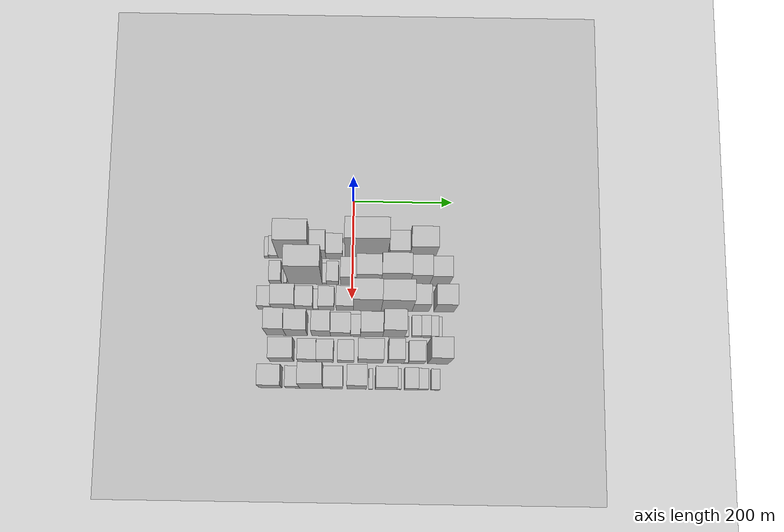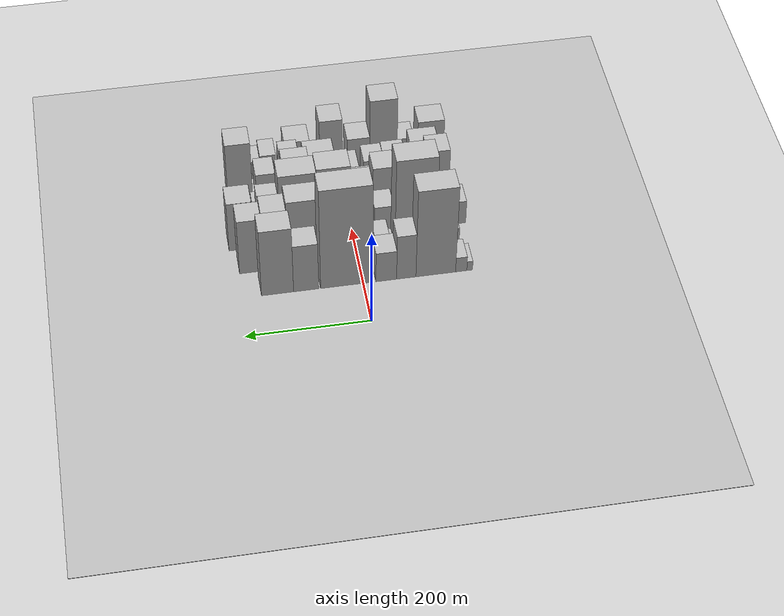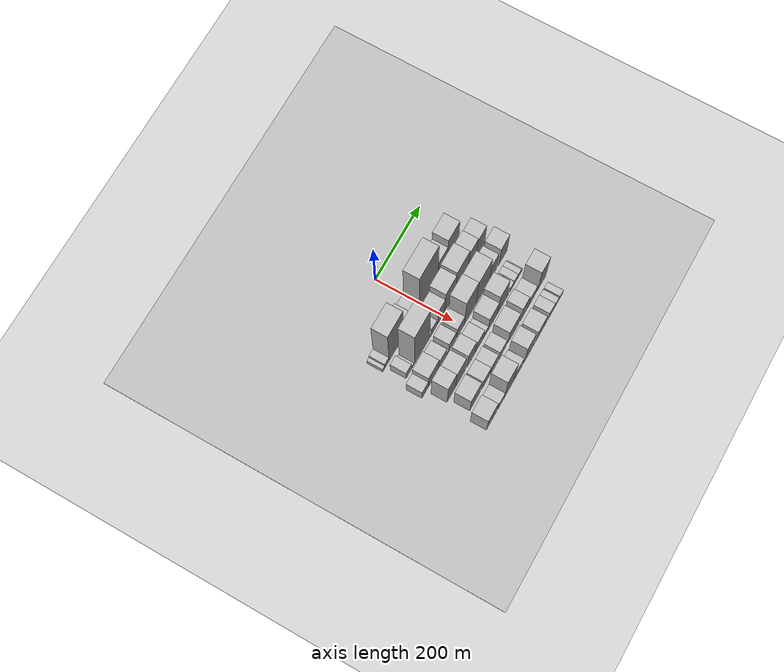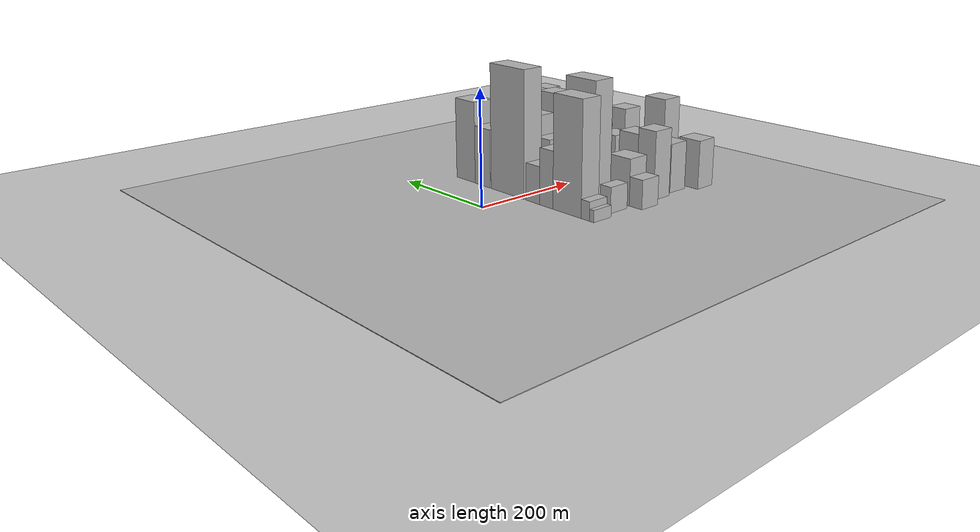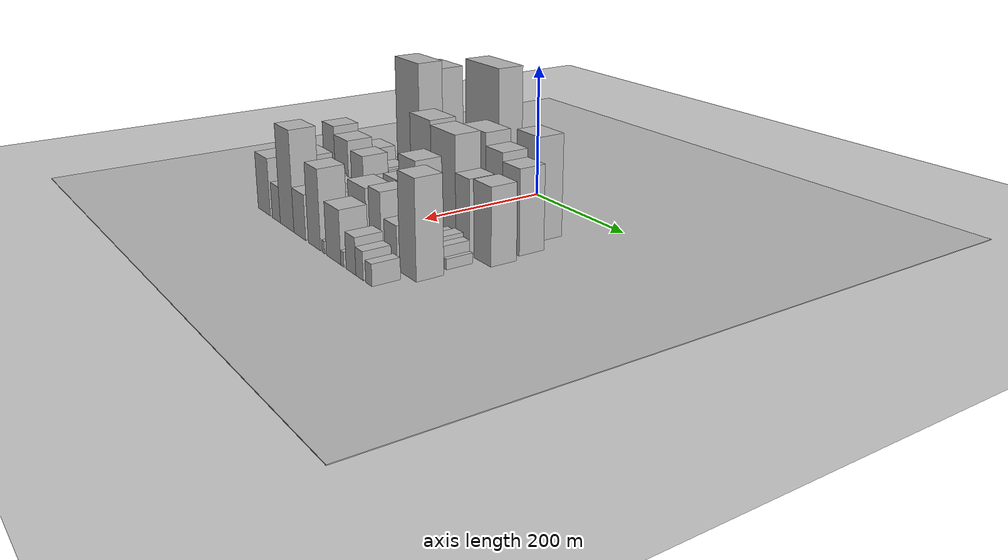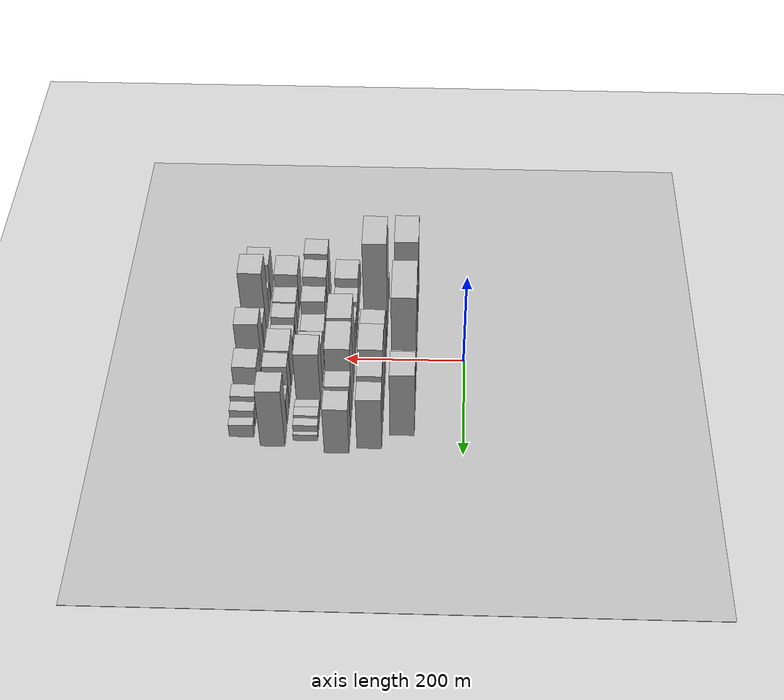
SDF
<sdf version="1.6">
 <world name="default">
  <include><name>ground_plane_1</name><uri>model://HANNAS_ground_plane</uri></include>
  <include>
   <name>ground_plane_2</name>
   <uri>model://HANNAS_ground_plane</uri>
   <pose>100 0 0  0 0 0</pose>
  </include>
  <model name="building_21">
   <static>1</static>
   <pose>100.0000 -172.8914 0 0.000000 0.000000 0.000000</pose>
   <link name="link">
    <pose>0 0 10.50 0 0 0</pose>
    <collision name="collision"><geometry><box><size>40.0000 9.2983 21.0000</size></box></geometry></collision>
    <visual name="visual">
     <cast_shadows>0</cast_shadows>
     <geometry><box><size>40.0000 9.2983 21.0000</size></box></geometry>
     <material>
      <script>
       <uri>model://HANNAS_wall/materials/scripts</uri>
       <uri>model://HANNAS_wall/materials/textures</uri>
       <name>vrc/HANNAS_wall</name>
      </script>
     </material>
    </visual>
   </link>
  </model>
  <model name="building_22">
   <static>1</static>
   <pose>100.0000 -159.0187 0 0.000000 0.000000 0.000000</pose>
   <link name="link">
    <pose>0 0 16.50 0 0 0</pose>
    <collision name="collision"><geometry><box><size>40.0000 18.4472 33.0000</size></box></geometry></collision>
    <visual name="visual">
     <cast_shadows>0</cast_shadows>
     <geometry><box><size>40.0000 18.4472 33.0000</size></box></geometry>
     <material>
      <script>
       <uri>model://HANNAS_wall/materials/scripts</uri>
       <uri>model://HANNAS_wall/materials/textures</uri>
       <name>vrc/HANNAS_wall</name>
      </script>
     </material>
    </visual>
   </link>
  </model>
  <model name="building_23">
   <static>1</static>
   <pose>100.0000 -117.4576 0 0.000000 0.000000 0.000000</pose>
   <link name="link">
    <pose>0 0 97.50 0 0 0</pose>
    <collision name="collision"><geometry><box><size>40.0000 64.6749 195.0000</size></box></geometry></collision>
    <visual name="visual">
     <cast_shadows>0</cast_shadows>
     <geometry><box><size>40.0000 64.6749 195.0000</size></box></geometry>
     <material>
      <script>
       <uri>model://HANNAS_wall/materials/scripts</uri>
       <uri>model://HANNAS_wall/materials/textures</uri>
       <name>vrc/HANNAS_wall</name>
      </script>
     </material>
    </visual>
   </link>
  </model>
  <model name="building_24">
   <static>1</static>
   <pose>100.0000 -69.4179 0 0.000000 0.000000 0.000000</pose>
   <link name="link">
    <pose>0 0 49.50 0 0 0</pose>
    <collision name="collision"><geometry><box><size>40.0000 31.4046 99.0000</size></box></geometry></collision>
    <visual name="visual">
     <cast_shadows>0</cast_shadows>
     <geometry><box><size>40.0000 31.4046 99.0000</size></box></geometry>
     <material>
      <script>
       <uri>model://HANNAS_wall/materials/scripts</uri>
       <uri>model://HANNAS_wall/materials/textures</uri>
       <name>vrc/HANNAS_wall</name>
      </script>
     </material>
    </visual>
   </link>
  </model>
  <model name="building_25">
   <static>1</static>
   <pose>100.0000 -36.9194 0 0.000000 0.000000 0.000000</pose>
   <link name="link">
    <pose>0 0 33.00 0 0 0</pose>
    <collision name="collision"><geometry><box><size>40.0000 33.5924 66.0000</size></box></geometry></collision>
    <visual name="visual">
     <cast_shadows>0</cast_shadows>
     <geometry><box><size>40.0000 33.5924 66.0000</size></box></geometry>
     <material>
      <script>
       <uri>model://HANNAS_wall/materials/scripts</uri>
       <uri>model://HANNAS_wall/materials/textures</uri>
       <name>vrc/HANNAS_wall</name>
      </script>
     </material>
    </visual>
   </link>
  </model>
  <model name="building_26">
   <static>1</static>
   <pose>100.0000 27.0300 0 0.000000 0.000000 0.000000</pose>
   <link name="link">
    <pose>0 0 111.00 0 0 0</pose>
    <collision name="collision"><geometry><box><size>40.0000 84.3064 222.0000</size></box></geometry></collision>
    <visual name="visual">
     <cast_shadows>0</cast_shadows>
     <geometry><box><size>40.0000 84.3064 222.0000</size></box></geometry>
     <material>
      <script>
       <uri>model://HANNAS_wall/materials/scripts</uri>
       <uri>model://HANNAS_wall/materials/textures</uri>
       <name>vrc/HANNAS_wall</name>
      </script>
     </material>
    </visual>
   </link>
  </model>
  <model name="building_27">
   <static>1</static>
   <pose>100.0000 92.3756 0 0.000000 0.000000 0.000000</pose>
   <link name="link">
    <pose>0 0 52.50 0 0 0</pose>
    <collision name="collision"><geometry><box><size>40.0000 40.3848 105.0000</size></box></geometry></collision>
    <visual name="visual">
     <cast_shadows>0</cast_shadows>
     <geometry><box><size>40.0000 40.3848 105.0000</size></box></geometry>
     <material>
      <script>
       <uri>model://HANNAS_wall/materials/scripts</uri>
       <uri>model://HANNAS_wall/materials/textures</uri>
       <name>vrc/HANNAS_wall</name>
      </script>
     </material>
    </visual>
   </link>
  </model>
  <model name="building_28">
   <static>1</static>
   <pose>100.0000 138.3007 0 0.000000 0.000000 0.000000</pose>
   <link name="link">
    <pose>0 0 73.50 0 0 0</pose>
    <collision name="collision"><geometry><box><size>40.0000 51.4654 147.0000</size></box></geometry></collision>
    <visual name="visual">
     <cast_shadows>0</cast_shadows>
     <geometry><box><size>40.0000 51.4654 147.0000</size></box></geometry>
     <material>
      <script>
       <uri>model://HANNAS_wall/materials/scripts</uri>
       <uri>model://HANNAS_wall/materials/textures</uri>
       <name>vrc/HANNAS_wall</name>
      </script>
     </material>
    </visual>
   </link>
  </model>
  <model name="building_71">
   <static>1</static>
   <pose>152.0000 -153.5193 0 0.000000 0.000000 0.000000</pose>
   <link name="link">
    <pose>0 0 22.50 0 0 0</pose>
    <collision name="collision"><geometry><box><size>40.0000 23.7424 45.0000</size></box></geometry></collision>
    <visual name="visual">
     <cast_shadows>0</cast_shadows>
     <geometry><box><size>40.0000 23.7424 45.0000</size></box></geometry>
     <material>
      <script>
       <uri>model://HANNAS_wall/materials/scripts</uri>
       <uri>model://HANNAS_wall/materials/textures</uri>
       <name>vrc/HANNAS_wall</name>
      </script>
     </material>
    </visual>
   </link>
  </model>
  <model name="building_72">
   <static>1</static>
   <pose>152.0000 -134.0008 0 0.000000 0.000000 0.000000</pose>
   <link name="link">
    <pose>0 0 9.00 0 0 0</pose>
    <collision name="collision"><geometry><box><size>40.0000 7.2945 18.0000</size></box></geometry></collision>
    <visual name="visual">
     <cast_shadows>0</cast_shadows>
     <geometry><box><size>40.0000 7.2945 18.0000</size></box></geometry>
     <material>
      <script>
       <uri>model://HANNAS_wall/materials/scripts</uri>
       <uri>model://HANNAS_wall/materials/textures</uri>
       <name>vrc/HANNAS_wall</name>
      </script>
     </material>
    </visual>
   </link>
  </model>
  <model name="building_73">
   <static>1</static>
   <pose>152.0000 -93.7204 0 0.000000 0.000000 0.000000</pose>
   <link name="link">
    <pose>0 0 106.50 0 0 0</pose>
    <collision name="collision"><geometry><box><size>40.0000 67.2662 213.0000</size></box></geometry></collision>
    <visual name="visual">
     <cast_shadows>0</cast_shadows>
     <geometry><box><size>40.0000 67.2662 213.0000</size></box></geometry>
     <material>
      <script>
       <uri>model://HANNAS_wall/materials/scripts</uri>
       <uri>model://HANNAS_wall/materials/textures</uri>
       <name>vrc/HANNAS_wall</name>
      </script>
     </material>
    </visual>
   </link>
  </model>
  <model name="building_74">
   <static>1</static>
   <pose>152.0000 -55.7705 0 0.000000 0.000000 0.000000</pose>
   <link name="link">
    <pose>0 0 10.50 0 0 0</pose>
    <collision name="collision"><geometry><box><size>40.0000 8.6337 21.0000</size></box></geometry></collision>
    <visual name="visual">
     <cast_shadows>0</cast_shadows>
     <geometry><box><size>40.0000 8.6337 21.0000</size></box></geometry>
     <material>
      <script>
       <uri>model://HANNAS_wall/materials/scripts</uri>
       <uri>model://HANNAS_wall/materials/textures</uri>
       <name>vrc/HANNAS_wall</name>
      </script>
     </material>
    </visual>
   </link>
  </model>
  <model name="building_75">
   <static>1</static>
   <pose>152.0000 -39.3930 0 0.000000 0.000000 0.000000</pose>
   <link name="link">
    <pose>0 0 22.50 0 0 0</pose>
    <collision name="collision"><geometry><box><size>40.0000 24.1213 45.0000</size></box></geometry></collision>
    <visual name="visual">
     <cast_shadows>0</cast_shadows>
     <geometry><box><size>40.0000 24.1213 45.0000</size></box></geometry>
     <material>
      <script>
       <uri>model://HANNAS_wall/materials/scripts</uri>
       <uri>model://HANNAS_wall/materials/textures</uri>
       <name>vrc/HANNAS_wall</name>
      </script>
     </material>
    </visual>
   </link>
  </model>
  <model name="building_76">
   <static>1</static>
   <pose>152.0000 -7.5418 0 0.000000 0.000000 0.000000</pose>
   <link name="link">
    <pose>0 0 48.00 0 0 0</pose>
    <collision name="collision"><geometry><box><size>40.0000 31.5811 96.0000</size></box></geometry></collision>
    <visual name="visual">
     <cast_shadows>0</cast_shadows>
     <geometry><box><size>40.0000 31.5811 96.0000</size></box></geometry>
     <material>
      <script>
       <uri>model://HANNAS_wall/materials/scripts</uri>
       <uri>model://HANNAS_wall/materials/textures</uri>
       <name>vrc/HANNAS_wall</name>
      </script>
     </material>
    </visual>
   </link>
  </model>
  <model name="building_77">
   <static>1</static>
   <pose>152.0000 32.6803 0 0.000000 0.000000 0.000000</pose>
   <link name="link">
    <pose>0 0 66.00 0 0 0</pose>
    <collision name="collision"><geometry><box><size>40.0000 48.8631 132.0000</size></box></geometry></collision>
    <visual name="visual">
     <cast_shadows>0</cast_shadows>
     <geometry><box><size>40.0000 48.8631 132.0000</size></box></geometry>
     <material>
      <script>
       <uri>model://HANNAS_wall/materials/scripts</uri>
       <uri>model://HANNAS_wall/materials/textures</uri>
       <name>vrc/HANNAS_wall</name>
      </script>
     </material>
    </visual>
   </link>
  </model>
  <model name="building_78">
   <static>1</static>
   <pose>152.0000 85.6842 0 0.000000 0.000000 0.000000</pose>
   <link name="link">
    <pose>0 0 75.00 0 0 0</pose>
    <collision name="collision"><geometry><box><size>40.0000 57.1447 150.0000</size></box></geometry></collision>
    <visual name="visual">
     <cast_shadows>0</cast_shadows>
     <geometry><box><size>40.0000 57.1447 150.0000</size></box></geometry>
     <material>
      <script>
       <uri>model://HANNAS_wall/materials/scripts</uri>
       <uri>model://HANNAS_wall/materials/textures</uri>
       <name>vrc/HANNAS_wall</name>
      </script>
     </material>
    </visual>
   </link>
  </model>
  <model name="building_79">
   <static>1</static>
   <pose>152.0000 134.1313 0 0.000000 0.000000 0.000000</pose>
   <link name="link">
    <pose>0 0 66.00 0 0 0</pose>
    <collision name="collision"><geometry><box><size>40.0000 39.7495 132.0000</size></box></geometry></collision>
    <visual name="visual">
     <cast_shadows>0</cast_shadows>
     <geometry><box><size>40.0000 39.7495 132.0000</size></box></geometry>
     <material>
      <script>
       <uri>model://HANNAS_wall/materials/scripts</uri>
       <uri>model://HANNAS_wall/materials/textures</uri>
       <name>vrc/HANNAS_wall</name>
      </script>
     </material>
    </visual>
   </link>
  </model>
  <model name="building_80">
   <static>1</static>
   <pose>152.0000 173.3808 0 0.000000 0.000000 0.000000</pose>
   <link name="link">
    <pose>0 0 60.00 0 0 0</pose>
    <collision name="collision"><geometry><box><size>40.0000 38.7493 120.0000</size></box></geometry></collision>
    <visual name="visual">
     <cast_shadows>0</cast_shadows>
     <geometry><box><size>40.0000 38.7493 120.0000</size></box></geometry>
     <material>
      <script>
       <uri>model://HANNAS_wall/materials/scripts</uri>
       <uri>model://HANNAS_wall/materials/textures</uri>
       <name>vrc/HANNAS_wall</name>
      </script>
     </material>
    </visual>
   </link>
  </model>
  <model name="building_120">
   <static>1</static>
   <pose>204.0000 -173.1836 0 0.000000 0.000000 0.000000</pose>
   <link name="link">
    <pose>0 0 25.50 0 0 0</pose>
    <collision name="collision"><geometry><box><size>40.0000 27.6840 51.0000</size></box></geometry></collision>
    <visual name="visual">
     <cast_shadows>0</cast_shadows>
     <geometry><box><size>40.0000 27.6840 51.0000</size></box></geometry>
     <material>
      <script>
       <uri>model://HANNAS_wall/materials/scripts</uri>
       <uri>model://HANNAS_wall/materials/textures</uri>
       <name>vrc/HANNAS_wall</name>
      </script>
     </material>
    </visual>
   </link>
  </model>
  <model name="building_121">
   <static>1</static>
   <pose>204.0000 -135.8335 0 0.000000 0.000000 0.000000</pose>
   <link name="link">
    <pose>0 0 40.50 0 0 0</pose>
    <collision name="collision"><geometry><box><size>40.0000 47.0164 81.0000</size></box></geometry></collision>
    <visual name="visual">
     <cast_shadows>0</cast_shadows>
     <geometry><box><size>40.0000 47.0164 81.0000</size></box></geometry>
     <material>
      <script>
       <uri>model://HANNAS_wall/materials/scripts</uri>
       <uri>model://HANNAS_wall/materials/textures</uri>
       <name>vrc/HANNAS_wall</name>
      </script>
     </material>
    </visual>
   </link>
  </model>
  <model name="building_122">
   <static>1</static>
   <pose>204.0000 -94.7266 0 0.000000 0.000000 0.000000</pose>
   <link name="link">
    <pose>0 0 30.00 0 0 0</pose>
    <collision name="collision"><geometry><box><size>40.0000 35.1974 60.0000</size></box></geometry></collision>
    <visual name="visual">
     <cast_shadows>0</cast_shadows>
     <geometry><box><size>40.0000 35.1974 60.0000</size></box></geometry>
     <material>
      <script>
       <uri>model://HANNAS_wall/materials/scripts</uri>
       <uri>model://HANNAS_wall/materials/textures</uri>
       <name>vrc/HANNAS_wall</name>
      </script>
     </material>
    </visual>
   </link>
  </model>
  <model name="building_123">
   <static>1</static>
   <pose>204.0000 -71.9703 0 0.000000 0.000000 0.000000</pose>
   <link name="link">
    <pose>0 0 10.50 0 0 0</pose>
    <collision name="collision"><geometry><box><size>40.0000 10.3151 21.0000</size></box></geometry></collision>
    <visual name="visual">
     <cast_shadows>0</cast_shadows>
     <geometry><box><size>40.0000 10.3151 21.0000</size></box></geometry>
     <material>
      <script>
       <uri>model://HANNAS_wall/materials/scripts</uri>
       <uri>model://HANNAS_wall/materials/textures</uri>
       <name>vrc/HANNAS_wall</name>
      </script>
     </material>
    </visual>
   </link>
  </model>
  <model name="building_124">
   <static>1</static>
   <pose>204.0000 -50.9998 0 0.000000 0.000000 0.000000</pose>
   <link name="link">
    <pose>0 0 30.00 0 0 0</pose>
    <collision name="collision"><geometry><box><size>40.0000 31.6260 60.0000</size></box></geometry></collision>
    <visual name="visual">
     <cast_shadows>0</cast_shadows>
     <geometry><box><size>40.0000 31.6260 60.0000</size></box></geometry>
     <material>
      <script>
       <uri>model://HANNAS_wall/materials/scripts</uri>
       <uri>model://HANNAS_wall/materials/textures</uri>
       <name>vrc/HANNAS_wall</name>
      </script>
     </material>
    </visual>
   </link>
  </model>
  <model name="building_125">
   <static>1</static>
   <pose>204.0000 -13.8302 0 0.000000 0.000000 0.000000</pose>
   <link name="link">
    <pose>0 0 34.50 0 0 0</pose>
    <collision name="collision"><geometry><box><size>40.0000 34.7131 69.0000</size></box></geometry></collision>
    <visual name="visual">
     <cast_shadows>0</cast_shadows>
     <geometry><box><size>40.0000 34.7131 69.0000</size></box></geometry>
     <material>
      <script>
       <uri>model://HANNAS_wall/materials/scripts</uri>
       <uri>model://HANNAS_wall/materials/textures</uri>
       <name>vrc/HANNAS_wall</name>
      </script>
     </material>
    </visual>
   </link>
  </model>
  <model name="building_126">
   <static>1</static>
   <pose>204.0000 30.9780 0 0.000000 0.000000 0.000000</pose>
   <link name="link">
    <pose>0 0 81.00 0 0 0</pose>
    <collision name="collision"><geometry><box><size>40.0000 54.9033 162.0000</size></box></geometry></collision>
    <visual name="visual">
     <cast_shadows>0</cast_shadows>
     <geometry><box><size>40.0000 54.9033 162.0000</size></box></geometry>
     <material>
      <script>
       <uri>model://HANNAS_wall/materials/scripts</uri>
       <uri>model://HANNAS_wall/materials/textures</uri>
       <name>vrc/HANNAS_wall</name>
      </script>
     </material>
    </visual>
   </link>
  </model>
  <model name="building_127">
   <static>1</static>
   <pose>204.0000 89.1128 0 0.000000 0.000000 0.000000</pose>
   <link name="link">
    <pose>0 0 78.00 0 0 0</pose>
    <collision name="collision"><geometry><box><size>40.0000 61.3663 156.0000</size></box></geometry></collision>
    <visual name="visual">
     <cast_shadows>0</cast_shadows>
     <geometry><box><size>40.0000 61.3663 156.0000</size></box></geometry>
     <material>
      <script>
       <uri>model://HANNAS_wall/materials/scripts</uri>
       <uri>model://HANNAS_wall/materials/textures</uri>
       <name>vrc/HANNAS_wall</name>
      </script>
     </material>
    </visual>
   </link>
  </model>
  <model name="building_128">
   <static>1</static>
   <pose>204.0000 136.5996 0 0.000000 0.000000 0.000000</pose>
   <link name="link">
    <pose>0 0 52.50 0 0 0</pose>
    <collision name="collision"><geometry><box><size>40.0000 33.6071 105.0000</size></box></geometry></collision>
    <visual name="visual">
     <cast_shadows>0</cast_shadows>
     <geometry><box><size>40.0000 33.6071 105.0000</size></box></geometry>
     <material>
      <script>
       <uri>model://HANNAS_wall/materials/scripts</uri>
       <uri>model://HANNAS_wall/materials/textures</uri>
       <name>vrc/HANNAS_wall</name>
      </script>
     </material>
    </visual>
   </link>
  </model>
  <model name="building_129">
   <static>1</static>
   <pose>204.0000 183.4770 0 0.000000 0.000000 0.000000</pose>
   <link name="link">
    <pose>0 0 54.00 0 0 0</pose>
    <collision name="collision"><geometry><box><size>40.0000 40.1476 108.0000</size></box></geometry></collision>
    <visual name="visual">
     <cast_shadows>0</cast_shadows>
     <geometry><box><size>40.0000 40.1476 108.0000</size></box></geometry>
     <material>
      <script>
       <uri>model://HANNAS_wall/materials/scripts</uri>
       <uri>model://HANNAS_wall/materials/textures</uri>
       <name>vrc/HANNAS_wall</name>
      </script>
     </material>
    </visual>
   </link>
  </model>
  <model name="building_168">
   <static>1</static>
   <pose>256.0000 -149.1735 0 0.000000 0.000000 0.000000</pose>
   <link name="link">
    <pose>0 0 60.00 0 0 0</pose>
    <collision name="collision"><geometry><box><size>40.0000 37.8262 120.0000</size></box></geometry></collision>
    <visual name="visual">
     <cast_shadows>0</cast_shadows>
     <geometry><box><size>40.0000 37.8262 120.0000</size></box></geometry>
     <material>
      <script>
       <uri>model://HANNAS_wall/materials/scripts</uri>
       <uri>model://HANNAS_wall/materials/textures</uri>
       <name>vrc/HANNAS_wall</name>
      </script>
     </material>
    </visual>
   </link>
  </model>
  <model name="building_169">
   <static>1</static>
   <pose>256.0000 -108.7090 0 0.000000 0.000000 0.000000</pose>
   <link name="link">
    <pose>0 0 54.00 0 0 0</pose>
    <collision name="collision"><geometry><box><size>40.0000 43.1027 108.0000</size></box></geometry></collision>
    <visual name="visual">
     <cast_shadows>0</cast_shadows>
     <geometry><box><size>40.0000 43.1027 108.0000</size></box></geometry>
     <material>
      <script>
       <uri>model://HANNAS_wall/materials/scripts</uri>
       <uri>model://HANNAS_wall/materials/textures</uri>
       <name>vrc/HANNAS_wall</name>
      </script>
     </material>
    </visual>
   </link>
  </model>
  <model name="building_170">
   <static>1</static>
   <pose>256.0000 -59.7627 0 0.000000 0.000000 0.000000</pose>
   <link name="link">
    <pose>0 0 48.00 0 0 0</pose>
    <collision name="collision"><geometry><box><size>40.0000 36.7899 96.0000</size></box></geometry></collision>
    <visual name="visual">
     <cast_shadows>0</cast_shadows>
     <geometry><box><size>40.0000 36.7899 96.0000</size></box></geometry>
     <material>
      <script>
       <uri>model://HANNAS_wall/materials/scripts</uri>
       <uri>model://HANNAS_wall/materials/textures</uri>
       <name>vrc/HANNAS_wall</name>
      </script>
     </material>
    </visual>
   </link>
  </model>
  <model name="building_171">
   <static>1</static>
   <pose>256.0000 -21.5975 0 0.000000 0.000000 0.000000</pose>
   <link name="link">
    <pose>0 0 33.00 0 0 0</pose>
    <collision name="collision"><geometry><box><size>40.0000 39.5406 66.0000</size></box></geometry></collision>
    <visual name="visual">
     <cast_shadows>0</cast_shadows>
     <geometry><box><size>40.0000 39.5406 66.0000</size></box></geometry>
     <material>
      <script>
       <uri>model://HANNAS_wall/materials/scripts</uri>
       <uri>model://HANNAS_wall/materials/textures</uri>
       <name>vrc/HANNAS_wall</name>
      </script>
     </material>
    </visual>
   </link>
  </model>
  <model name="building_172">
   <static>1</static>
   <pose>256.0000 8.1144 0 0.000000 0.000000 0.000000</pose>
   <link name="link">
    <pose>0 0 18.00 0 0 0</pose>
    <collision name="collision"><geometry><box><size>40.0000 19.8833 36.0000</size></box></geometry></collision>
    <visual name="visual">
     <cast_shadows>0</cast_shadows>
     <geometry><box><size>40.0000 19.8833 36.0000</size></box></geometry>
     <material>
      <script>
       <uri>model://HANNAS_wall/materials/scripts</uri>
       <uri>model://HANNAS_wall/materials/textures</uri>
       <name>vrc/HANNAS_wall</name>
      </script>
     </material>
    </visual>
   </link>
  </model>
  <model name="building_173">
   <static>1</static>
   <pose>256.0000 40.0104 0 0.000000 0.000000 0.000000</pose>
   <link name="link">
    <pose>0 0 43.50 0 0 0</pose>
    <collision name="collision"><geometry><box><size>40.0000 43.9087 87.0000</size></box></geometry></collision>
    <visual name="visual">
     <cast_shadows>0</cast_shadows>
     <geometry><box><size>40.0000 43.9087 87.0000</size></box></geometry>
     <material>
      <script>
       <uri>model://HANNAS_wall/materials/scripts</uri>
       <uri>model://HANNAS_wall/materials/textures</uri>
       <name>vrc/HANNAS_wall</name>
      </script>
     </material>
    </visual>
   </link>
  </model>
  <model name="building_174">
   <static>1</static>
   <pose>256.0000 83.8368 0 0.000000 0.000000 0.000000</pose>
   <link name="link">
    <pose>0 0 63.00 0 0 0</pose>
    <collision name="collision"><geometry><box><size>40.0000 43.7442 126.0000</size></box></geometry></collision>
    <visual name="visual">
     <cast_shadows>0</cast_shadows>
     <geometry><box><size>40.0000 43.7442 126.0000</size></box></geometry>
     <material>
      <script>
       <uri>model://HANNAS_wall/materials/scripts</uri>
       <uri>model://HANNAS_wall/materials/textures</uri>
       <name>vrc/HANNAS_wall</name>
      </script>
     </material>
    </visual>
   </link>
  </model>
  <model name="building_175">
   <static>1</static>
   <pose>256.0000 109.5484 0 0.000000 0.000000 0.000000</pose>
   <link name="link">
    <pose>0 0 9.00 0 0 0</pose>
    <collision name="collision"><geometry><box><size>40.0000 7.6789 18.0000</size></box></geometry></collision>
    <visual name="visual">
     <cast_shadows>0</cast_shadows>
     <geometry><box><size>40.0000 7.6789 18.0000</size></box></geometry>
     <material>
      <script>
       <uri>model://HANNAS_wall/materials/scripts</uri>
       <uri>model://HANNAS_wall/materials/textures</uri>
       <name>vrc/HANNAS_wall</name>
      </script>
     </material>
    </visual>
   </link>
  </model>
  <model name="building_176">
   <static>1</static>
   <pose>256.0000 128.5216 0 0.000000 0.000000 0.000000</pose>
   <link name="link">
    <pose>0 0 16.50 0 0 0</pose>
    <collision name="collision"><geometry><box><size>40.0000 18.2675 33.0000</size></box></geometry></collision>
    <visual name="visual">
     <cast_shadows>0</cast_shadows>
     <geometry><box><size>40.0000 18.2675 33.0000</size></box></geometry>
     <material>
      <script>
       <uri>model://HANNAS_wall/materials/scripts</uri>
       <uri>model://HANNAS_wall/materials/textures</uri>
       <name>vrc/HANNAS_wall</name>
      </script>
     </material>
    </visual>
   </link>
  </model>
  <model name="building_177">
   <static>1</static>
   <pose>256.0000 147.1443 0 0.000000 0.000000 0.000000</pose>
   <link name="link">
    <pose>0 0 18.00 0 0 0</pose>
    <collision name="collision"><geometry><box><size>40.0000 18.9779 36.0000</size></box></geometry></collision>
    <visual name="visual">
     <cast_shadows>0</cast_shadows>
     <geometry><box><size>40.0000 18.9779 36.0000</size></box></geometry>
     <material>
      <script>
       <uri>model://HANNAS_wall/materials/scripts</uri>
       <uri>model://HANNAS_wall/materials/textures</uri>
       <name>vrc/HANNAS_wall</name>
      </script>
     </material>
    </visual>
   </link>
  </model>
  <model name="building_178">
   <static>1</static>
   <pose>256.0000 164.4992 0 0.000000 0.000000 0.000000</pose>
   <link name="link">
    <pose>0 0 15.00 0 0 0</pose>
    <collision name="collision"><geometry><box><size>40.0000 15.7319 30.0000</size></box></geometry></collision>
    <visual name="visual">
     <cast_shadows>0</cast_shadows>
     <geometry><box><size>40.0000 15.7319 30.0000</size></box></geometry>
     <material>
      <script>
       <uri>model://HANNAS_wall/materials/scripts</uri>
       <uri>model://HANNAS_wall/materials/textures</uri>
       <name>vrc/HANNAS_wall</name>
      </script>
     </material>
    </visual>
   </link>
  </model>
  <model name="building_179">
   <static>1</static>
   <pose>256.0000 175.9818 0 0.000000 0.000000 0.000000</pose>
   <link name="link">
    <pose>0 0 7.50 0 0 0</pose>
    <collision name="collision"><geometry><box><size>40.0000 7.2333 15.0000</size></box></geometry></collision>
    <visual name="visual">
     <cast_shadows>0</cast_shadows>
     <geometry><box><size>40.0000 7.2333 15.0000</size></box></geometry>
     <material>
      <script>
       <uri>model://HANNAS_wall/materials/scripts</uri>
       <uri>model://HANNAS_wall/materials/textures</uri>
       <name>vrc/HANNAS_wall</name>
      </script>
     </material>
    </visual>
   </link>
  </model>
  <model name="building_224">
   <static>1</static>
   <pose>308.0000 -136.3993 0 0.000000 0.000000 0.000000</pose>
   <link name="link">
    <pose>0 0 43.50 0 0 0</pose>
    <collision name="collision"><geometry><box><size>40.0000 47.3264 87.0000</size></box></geometry></collision>
    <visual name="visual">
     <cast_shadows>0</cast_shadows>
     <geometry><box><size>40.0000 47.3264 87.0000</size></box></geometry>
     <material>
      <script>
       <uri>model://HANNAS_wall/materials/scripts</uri>
       <uri>model://HANNAS_wall/materials/textures</uri>
       <name>vrc/HANNAS_wall</name>
      </script>
     </material>
    </visual>
   </link>
  </model>
  <model name="building_225">
   <static>1</static>
   <pose>308.0000 -86.3762 0 0.000000 0.000000 0.000000</pose>
   <link name="link">
    <pose>0 0 33.00 0 0 0</pose>
    <collision name="collision"><geometry><box><size>40.0000 36.7200 66.0000</size></box></geometry></collision>
    <visual name="visual">
     <cast_shadows>0</cast_shadows>
     <geometry><box><size>40.0000 36.7200 66.0000</size></box></geometry>
     <material>
      <script>
       <uri>model://HANNAS_wall/materials/scripts</uri>
       <uri>model://HANNAS_wall/materials/textures</uri>
       <name>vrc/HANNAS_wall</name>
      </script>
     </material>
    </visual>
   </link>
  </model>
  <model name="building_226">
   <static>1</static>
   <pose>308.0000 -51.2881 0 0.000000 0.000000 0.000000</pose>
   <link name="link">
    <pose>0 0 31.50 0 0 0</pose>
    <collision name="collision"><geometry><box><size>40.0000 33.4562 63.0000</size></box></geometry></collision>
    <visual name="visual">
     <cast_shadows>0</cast_shadows>
     <geometry><box><size>40.0000 33.4562 63.0000</size></box></geometry>
     <material>
      <script>
       <uri>model://HANNAS_wall/materials/scripts</uri>
       <uri>model://HANNAS_wall/materials/textures</uri>
       <name>vrc/HANNAS_wall</name>
      </script>
     </material>
    </visual>
   </link>
  </model>
  <model name="building_227">
   <static>1</static>
   <pose>308.0000 -10.4296 0 0.000000 0.000000 0.000000</pose>
   <link name="link">
    <pose>0 0 27.00 0 0 0</pose>
    <collision name="collision"><geometry><box><size>40.0000 32.2607 54.0000</size></box></geometry></collision>
    <visual name="visual">
     <cast_shadows>0</cast_shadows>
     <geometry><box><size>40.0000 32.2607 54.0000</size></box></geometry>
     <material>
      <script>
       <uri>model://HANNAS_wall/materials/scripts</uri>
       <uri>model://HANNAS_wall/materials/textures</uri>
       <name>vrc/HANNAS_wall</name>
      </script>
     </material>
    </visual>
   </link>
  </model>
  <model name="building_228">
   <static>1</static>
   <pose>308.0000 38.6006 0 0.000000 0.000000 0.000000</pose>
   <link name="link">
    <pose>0 0 43.50 0 0 0</pose>
    <collision name="collision"><geometry><box><size>40.0000 49.7997 87.0000</size></box></geometry></collision>
    <visual name="visual">
     <cast_shadows>0</cast_shadows>
     <geometry><box><size>40.0000 49.7997 87.0000</size></box></geometry>
     <material>
      <script>
       <uri>model://HANNAS_wall/materials/scripts</uri>
       <uri>model://HANNAS_wall/materials/textures</uri>
       <name>vrc/HANNAS_wall</name>
      </script>
     </material>
    </visual>
   </link>
  </model>
  <model name="building_229">
   <static>1</static>
   <pose>308.0000 88.3138 0 0.000000 0.000000 0.000000</pose>
   <link name="link">
    <pose>0 0 46.50 0 0 0</pose>
    <collision name="collision"><geometry><box><size>40.0000 31.6268 93.0000</size></box></geometry></collision>
    <visual name="visual">
     <cast_shadows>0</cast_shadows>
     <geometry><box><size>40.0000 31.6268 93.0000</size></box></geometry>
     <material>
      <script>
       <uri>model://HANNAS_wall/materials/scripts</uri>
       <uri>model://HANNAS_wall/materials/textures</uri>
       <name>vrc/HANNAS_wall</name>
      </script>
     </material>
    </visual>
   </link>
  </model>
  <model name="building_230">
   <static>1</static>
   <pose>308.0000 108.4873 0 0.000000 0.000000 0.000000</pose>
   <link name="link">
    <pose>0 0 10.50 0 0 0</pose>
    <collision name="collision"><geometry><box><size>40.0000 8.7203 21.0000</size></box></geometry></collision>
    <visual name="visual">
     <cast_shadows>0</cast_shadows>
     <geometry><box><size>40.0000 8.7203 21.0000</size></box></geometry>
     <material>
      <script>
       <uri>model://HANNAS_wall/materials/scripts</uri>
       <uri>model://HANNAS_wall/materials/textures</uri>
       <name>vrc/HANNAS_wall</name>
      </script>
     </material>
    </visual>
   </link>
  </model>
  <model name="building_231">
   <static>1</static>
   <pose>308.0000 129.1007 0 0.000000 0.000000 0.000000</pose>
   <link name="link">
    <pose>0 0 30.00 0 0 0</pose>
    <collision name="collision"><geometry><box><size>40.0000 32.5064 60.0000</size></box></geometry></collision>
    <visual name="visual">
     <cast_shadows>0</cast_shadows>
     <geometry><box><size>40.0000 32.5064 60.0000</size></box></geometry>
     <material>
      <script>
       <uri>model://HANNAS_wall/materials/scripts</uri>
       <uri>model://HANNAS_wall/materials/textures</uri>
       <name>vrc/HANNAS_wall</name>
      </script>
     </material>
    </visual>
   </link>
  </model>
  <model name="building_232">
   <static>1</static>
   <pose>308.0000 171.9487 0 0.000000 0.000000 0.000000</pose>
   <link name="link">
    <pose>0 0 67.50 0 0 0</pose>
    <collision name="collision"><geometry><box><size>40.0000 41.1897 135.0000</size></box></geometry></collision>
    <visual name="visual">
     <cast_shadows>0</cast_shadows>
     <geometry><box><size>40.0000 41.1897 135.0000</size></box></geometry>
     <material>
      <script>
       <uri>model://HANNAS_wall/materials/scripts</uri>
       <uri>model://HANNAS_wall/materials/textures</uri>
       <name>vrc/HANNAS_wall</name>
      </script>
     </material>
    </visual>
   </link>
  </model>
  <model name="building_273">
   <static>1</static>
   <pose>360.0000 -157.3156 0 0.000000 0.000000 0.000000</pose>
   <link name="link">
    <pose>0 0 43.50 0 0 0</pose>
    <collision name="collision"><geometry><box><size>40.0000 44.5797 87.0000</size></box></geometry></collision>
    <visual name="visual">
     <cast_shadows>0</cast_shadows>
     <geometry><box><size>40.0000 44.5797 87.0000</size></box></geometry>
     <material>
      <script>
       <uri>model://HANNAS_wall/materials/scripts</uri>
       <uri>model://HANNAS_wall/materials/textures</uri>
       <name>vrc/HANNAS_wall</name>
      </script>
     </material>
    </visual>
   </link>
  </model>
  <model name="building_274">
   <static>1</static>
   <pose>360.0000 -113.9214 0 0.000000 0.000000 0.000000</pose>
   <link name="link">
    <pose>0 0 27.00 0 0 0</pose>
    <collision name="collision"><geometry><box><size>40.0000 28.2087 54.0000</size></box></geometry></collision>
    <visual name="visual">
     <cast_shadows>0</cast_shadows>
     <geometry><box><size>40.0000 28.2087 54.0000</size></box></geometry>
     <material>
      <script>
       <uri>model://HANNAS_wall/materials/scripts</uri>
       <uri>model://HANNAS_wall/materials/textures</uri>
       <name>vrc/HANNAS_wall</name>
      </script>
     </material>
    </visual>
   </link>
  </model>
  <model name="building_275">
   <static>1</static>
   <pose>360.0000 -76.6029 0 0.000000 0.000000 0.000000</pose>
   <link name="link">
    <pose>0 0 73.50 0 0 0</pose>
    <collision name="collision"><geometry><box><size>40.0000 46.4283 147.0000</size></box></geometry></collision>
    <visual name="visual">
     <cast_shadows>0</cast_shadows>
     <geometry><box><size>40.0000 46.4283 147.0000</size></box></geometry>
     <material>
      <script>
       <uri>model://HANNAS_wall/materials/scripts</uri>
       <uri>model://HANNAS_wall/materials/textures</uri>
       <name>vrc/HANNAS_wall</name>
      </script>
     </material>
    </visual>
   </link>
  </model>
  <model name="building_276">
   <static>1</static>
   <pose>360.0000 -34.2971 0 0.000000 0.000000 0.000000</pose>
   <link name="link">
    <pose>0 0 33.00 0 0 0</pose>
    <collision name="collision"><geometry><box><size>40.0000 38.1832 66.0000</size></box></geometry></collision>
    <visual name="visual">
     <cast_shadows>0</cast_shadows>
     <geometry><box><size>40.0000 38.1832 66.0000</size></box></geometry>
     <material>
      <script>
       <uri>model://HANNAS_wall/materials/scripts</uri>
       <uri>model://HANNAS_wall/materials/textures</uri>
       <name>vrc/HANNAS_wall</name>
      </script>
     </material>
    </visual>
   </link>
  </model>
  <model name="building_277">
   <static>1</static>
   <pose>360.0000 12.0751 0 0.000000 0.000000 0.000000</pose>
   <link name="link">
    <pose>0 0 57.00 0 0 0</pose>
    <collision name="collision"><geometry><box><size>40.0000 38.5612 114.0000</size></box></geometry></collision>
    <visual name="visual">
     <cast_shadows>0</cast_shadows>
     <geometry><box><size>40.0000 38.5612 114.0000</size></box></geometry>
     <material>
      <script>
       <uri>model://HANNAS_wall/materials/scripts</uri>
       <uri>model://HANNAS_wall/materials/textures</uri>
       <name>vrc/HANNAS_wall</name>
      </script>
     </material>
    </visual>
   </link>
  </model>
  <model name="building_278">
   <static>1</static>
   <pose>360.0000 39.3333 0 0.000000 0.000000 0.000000</pose>
   <link name="link">
    <pose>0 0 9.00 0 0 0</pose>
    <collision name="collision"><geometry><box><size>40.0000 7.9552 18.0000</size></box></geometry></collision>
    <visual name="visual">
     <cast_shadows>0</cast_shadows>
     <geometry><box><size>40.0000 7.9552 18.0000</size></box></geometry>
     <material>
      <script>
       <uri>model://HANNAS_wall/materials/scripts</uri>
       <uri>model://HANNAS_wall/materials/textures</uri>
       <name>vrc/HANNAS_wall</name>
      </script>
     </material>
    </visual>
   </link>
  </model>
  <model name="building_279">
   <static>1</static>
   <pose>360.0000 69.2983 0 0.000000 0.000000 0.000000</pose>
   <link name="link">
    <pose>0 0 37.50 0 0 0</pose>
    <collision name="collision"><geometry><box><size>40.0000 41.9748 75.0000</size></box></geometry></collision>
    <visual name="visual">
     <cast_shadows>0</cast_shadows>
     <geometry><box><size>40.0000 41.9748 75.0000</size></box></geometry>
     <material>
      <script>
       <uri>model://HANNAS_wall/materials/scripts</uri>
       <uri>model://HANNAS_wall/materials/textures</uri>
       <name>vrc/HANNAS_wall</name>
      </script>
     </material>
    </visual>
   </link>
  </model>
  <model name="building_280">
   <static>1</static>
   <pose>360.0000 94.7409 0 0.000000 0.000000 0.000000</pose>
   <link name="link">
    <pose>0 0 10.50 0 0 0</pose>
    <collision name="collision"><geometry><box><size>40.0000 8.9105 21.0000</size></box></geometry></collision>
    <visual name="visual">
     <cast_shadows>0</cast_shadows>
     <geometry><box><size>40.0000 8.9105 21.0000</size></box></geometry>
     <material>
      <script>
       <uri>model://HANNAS_wall/materials/scripts</uri>
       <uri>model://HANNAS_wall/materials/textures</uri>
       <name>vrc/HANNAS_wall</name>
      </script>
     </material>
    </visual>
   </link>
  </model>
  <model name="building_281">
   <static>1</static>
   <pose>360.0000 118.5671 0 0.000000 0.000000 0.000000</pose>
   <link name="link">
    <pose>0 0 25.50 0 0 0</pose>
    <collision name="collision"><geometry><box><size>40.0000 26.7419 51.0000</size></box></geometry></collision>
    <visual name="visual">
     <cast_shadows>0</cast_shadows>
     <geometry><box><size>40.0000 26.7419 51.0000</size></box></geometry>
     <material>
      <script>
       <uri>model://HANNAS_wall/materials/scripts</uri>
       <uri>model://HANNAS_wall/materials/textures</uri>
       <name>vrc/HANNAS_wall</name>
      </script>
     </material>
    </visual>
   </link>
  </model>
  <model name="building_282">
   <static>1</static>
   <pose>360.0000 141.9351 0 0.000000 0.000000 0.000000</pose>
   <link name="link">
    <pose>0 0 19.50 0 0 0</pose>
    <collision name="collision"><geometry><box><size>40.0000 19.9942 39.0000</size></box></geometry></collision>
    <visual name="visual">
     <cast_shadows>0</cast_shadows>
     <geometry><box><size>40.0000 19.9942 39.0000</size></box></geometry>
     <material>
      <script>
       <uri>model://HANNAS_wall/materials/scripts</uri>
       <uri>model://HANNAS_wall/materials/textures</uri>
       <name>vrc/HANNAS_wall</name>
      </script>
     </material>
    </visual>
   </link>
  </model>
  <model name="building_283">
   <static>1</static>
   <pose>360.0000 166.2778 0 0.000000 0.000000 0.000000</pose>
   <link name="link">
    <pose>0 0 15.00 0 0 0</pose>
    <collision name="collision"><geometry><box><size>40.0000 16.6911 30.0000</size></box></geometry></collision>
    <visual name="visual">
     <cast_shadows>0</cast_shadows>
     <geometry><box><size>40.0000 16.6911 30.0000</size></box></geometry>
     <material>
      <script>
       <uri>model://HANNAS_wall/materials/scripts</uri>
       <uri>model://HANNAS_wall/materials/textures</uri>
       <name>vrc/HANNAS_wall</name>
      </script>
     </material>
    </visual>
   </link>
  </model>
 </world>
</sdf>
